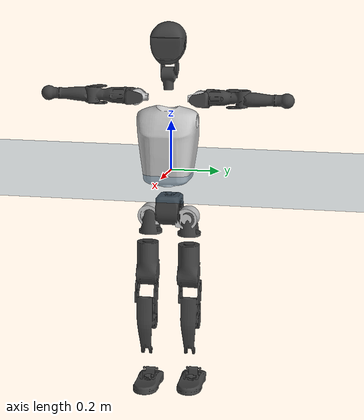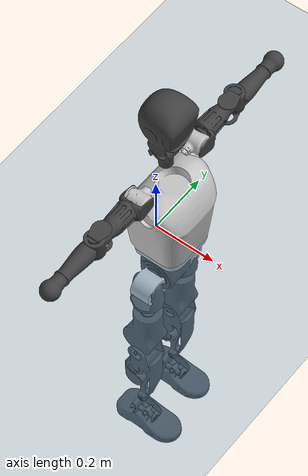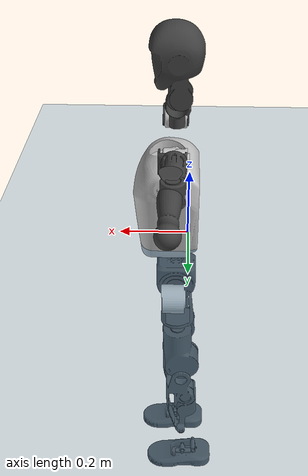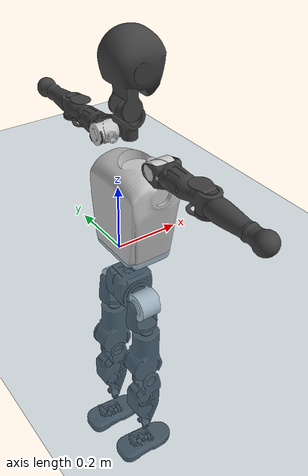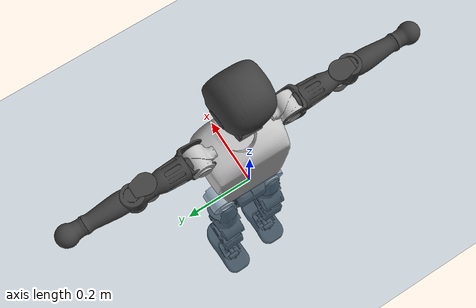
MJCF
<mujoco model="T1">
  <compiler angle="radian" assetdir="assets" balanceinertia="true" inertiafromgeom="false"/>

  <option timestep="0.005" density="1.2" viscosity="2e-05"/>

  <size nkey="1"/>

  <visual>
    <quality shadowsize="8192"/>
    <map shadowclip="0.5"/>
  </visual>

  <default>
    <default class="/">
      <joint armature="0.01" damping="0.01" frictionloss="0.1"/>
      <geom contype="0" conaffinity="0" group="1" solref="-1000 -80"/>
      <site size="0.01 0.005 0.005" group="5"/>
      <general forcelimited="true" biastype="affine" gainprm="25" biasprm="0 -25 -0.6"/>
      <default class="t1">
        <geom rgba="0.25 0.25 0.25 1"/>
        <default class="visual">
          <geom type="mesh" group="2"/>
        </default>
        <default class="collision">
          <geom group="3"/>
        </default>
        <default class="foot">
          <geom size="0.1115 0.05 0.015" type="box" condim="6" group="4" priority="1" solimp="0.015 1 0.015"/>
        </default>
        <default class="reward_collision_sphere">
          <geom group="5" rgba="1 0 0 1"/>
        </default>
      </default>
    </default>
  </default>

  <asset>
    <texture type="skybox" colorspace="auto" name="//unnamed_texture_0" builtin="gradient" rgb1="0.95 0.95 0.95" rgb2="0.95 0.95 0.95" width="100" height="600"/>
    <texture type="2d" colorspace="auto" name="texplane" builtin="checker" rgb1="0.345 0.575 0.748" rgb2="0.345 0.575 0.748" markrgb="1 1 1" width="512" height="512"/>
    <material name="MatPlane" class="/" texture="texplane" texuniform="true" texrepeat="2 2" specular="0.9"/>
    <mesh name="Trunk" class="/" file="Trunk.stl"/>
    <mesh name="H1" class="/" file="H1.stl"/>
    <mesh name="H2" class="/" file="H2.stl"/>
    <mesh name="AL1" class="/" file="AL1.stl"/>
    <mesh name="AL2" class="/" file="AL2.stl"/>
    <mesh name="AL3" class="/" file="AL3.stl"/>
    <mesh name="left_hand_link" class="/" file="left_hand_link.stl"/>
    <mesh name="AR1" class="/" file="AR1.stl"/>
    <mesh name="AR2" class="/" file="AR2.stl"/>
    <mesh name="AR3" class="/" file="AR3.stl"/>
    <mesh name="right_hand_link" class="/" file="right_hand_link.stl"/>
    <mesh name="Waist" class="/" file="Waist.stl"/>
    <mesh name="Hip_Pitch_Left" class="/" file="Hip_Pitch_Left.stl"/>
    <mesh name="Hip_Roll_Left" class="/" file="Hip_Roll_Left.stl"/>
    <mesh name="Hip_Yaw_Left" class="/" file="Hip_Yaw_Left.stl"/>
    <mesh name="Shank_Left" class="/" file="Shank_Left.stl"/>
    <mesh name="Ankle_Cross_Left" class="/" file="Ankle_Cross_Left.stl"/>
    <mesh name="left_foot_link" class="/" file="left_foot_link.stl"/>
    <mesh name="Hip_Pitch_Right" class="/" file="Hip_Pitch_Right.stl"/>
    <mesh name="Hip_Roll_Right" class="/" file="Hip_Roll_Right.stl"/>
    <mesh name="Hip_Yaw_Right" class="/" file="Hip_Yaw_Right.stl"/>
    <mesh name="Shank_Right" class="/" file="Shank_Right.stl"/>
    <mesh name="Ankle_Cross_Right" class="/" file="Ankle_Cross_Right.stl"/>
    <mesh name="right_foot_link" class="/" file="right_foot_link.stl"/>
  </asset>

  <worldbody>
    <geom name="floor" class="/" size="100 100 0.125" type="plane" group="0" material="MatPlane"/>
    <light name="toplight_shadow" class="/" pos="0 0 5" dir="0.0990148 0.0990148 -0.990148" type="directional" ambient="0.04 0.04 0.04" diffuse="0.55 0.55 0.55" specular="0.12 0.12 0.12"/>
    <light name="toplight_fill" class="/" pos="0 0 5" dir="0.0990148 0.0990148 -0.990148" type="directional" castshadow="false" ambient="0.04 0.04 0.04" diffuse="0.3 0.3 0.3" specular="0.08 0.08 0.08"/>
    <body name="trunk" childclass="t1" pos="0.00190986 -0.00132708 -0.00485927" quat="1 0.000424256 0.000544942 -0.000161698">
      <inertial pos="0.0343937 0.00439518 0.145756" quat="0.999972 0.00132815 -0.00700909 0.0021084" mass="8.84161" diaginertia="0.00434626 0.0206444 0.292643"/>
      <joint name="//unnamed_joint_0" type="free" armature="0" damping="0" frictionloss="0"/>
      <geom name="//unnamed_geom_1" class="visual" rgba="0.76 0.76 0.76 1" mesh="Trunk"/>
      <geom name="//unnamed_geom_2" class="collision" size="0.0682121 0.0909495 0.136424" pos="0.0332457 0 0.168135" type="box"/>
      <geom name="//unnamed_geom_3" class="reward_collision_sphere" size="0.104592" pos="0.0332457 0 0.140113"/>
      <geom name="//unnamed_geom_4" class="reward_collision_sphere" size="0.0136424" pos="0.0332457 0.0657272 0"/>
      <geom name="//unnamed_geom_5" class="reward_collision_sphere" size="0.0136424" pos="0.0332457 -0.0657272 0"/>
      <geom name="//unnamed_geom_6" class="reward_collision_sphere" size="0.0136424" pos="0.0332457 0.082739 0.252203"/>
      <geom name="//unnamed_geom_7" class="reward_collision_sphere" size="0.0136424" pos="0.0332457 -0.082739 0.252203"/>
      <site name="imu" pos="0.044863 -0.0468687 0.0437203" size="0.00909495"/>
      <camera name="track" pos="0 -1.54652 0" quat="0.707107 0.707107 0 0" mode="trackcom"/>
      <camera name="ego_camera" pos="0.0675996 0 0.588473" quat="-0.5 -0.5 0.5 0.5"/>
      <body name="H1" pos="0.0345337 -0.00136451 0.341036" quat="0.999991 0.00415503 0.00115611 5.86426e-05">
        <inertial pos="-0.0010275 9.96695e-05 0.0793463" quat="0.760877 -0.0134452 0.00522308 0.648735" mass="0.264986" diaginertia="1.23124e-05 5.55706e-05 0.000728683"/>
        <joint name="AAHead_yaw" pos="0 0 0" axis="0.00678737 -0.0172598 0.999828" range="-1.53853 1.53478" armature="0.00457471" damping="0.035742" frictionloss="0.0969709"/>
        <geom name="//unnamed_geom_8" class="visual" mesh="H1"/>
        <body name="H2" pos="-0.0107066 0.00385975 0.0863431" quat="0.999999 0.000242156 -0.00110466 0.00093458">
          <inertial pos="0.00186346 0.00160611 0.136239" quat="0.988717 0.10723 -0.0702741 -0.0774778" mass="0.479988" diaginertia="0.00010987 0.000524867 0.00899293"/>
          <joint name="Head_pitch" pos="0 0 0" axis="-0.0169136 -0.999663 0.0196722" range="-1.23816 0.428989" armature="0.00870411" damping="0.0165335" frictionloss="0.0842547"/>
          <geom name="//unnamed_geom_9" class="visual" mesh="H2"/>
          <geom name="//unnamed_geom_10" class="collision" size="0.0727596" pos="0.00554095 0 0.154124"/>
          <geom name="//unnamed_geom_11" class="reward_collision_sphere" size="0.0818545" pos="0.0110819 0 0.140113"/>
        </body>
      </body>
      <body name="AL1" pos="0.036702 0.079096 0.306441" quat="0.999997 0.000559171 -0.00246937 -0.000387101">
        <inertial pos="-0.00126324 0.0277518 -0.000673669" quat="0.504448 0.49128 -0.505778 0.498363" mass="0.407276" diaginertia="6.75685e-05 0.000363168 0.0016093"/>
        <joint name="Left_Shoulder_Pitch" pos="0 0 0" axis="-0.00936009 0.999883 0.012105" stiffness="0.00774805" range="-3.34558 1.18975" armature="0.00933051" damping="0.0153921" frictionloss="0.110868"/>
        <geom name="//unnamed_geom_12" class="visual" rgba="0.76 0.76 0.76 1" mesh="AL1"/>
        <body name="AL2" pos="0.00654443 0.0334645 0.000574752" quat="1 5.02213e-05 -0.000111101 -0.000177167">
          <inertial pos="0.00467065 0.0294022 -0.00770181" quat="0.480257 0.511293 -0.492077 0.515552" mass="0.102222" diaginertia="1.94514e-05 9.86431e-05 0.000859521"/>
          <joint name="Left_Shoulder_Roll" pos="0 0 0" axis="-0.99984 0.0172854 -0.00459514" range="-1.74759 1.56724" armature="0.0127449" damping="0.025463" frictionloss="0.0885095"/>
          <geom name="//unnamed_geom_13" class="visual" mesh="AL2"/>
          <body name="AL3" pos="-0.00453726 0.044286 0.00737382" quat="1 -0.000633864 0.000363798 -2.53616e-06">
            <inertial pos="-0.00465756 0.0656976 0.000318242" quat="0.709122 0.704952 -0.0049258 -0.0128302" mass="0.764166" diaginertia="0.000725827 0.00337706 0.00380901"/>
            <joint name="Left_Elbow_Pitch" pos="0 0 0" axis="0.0324149 -0.998738 0.0383535" stiffness="0.0483177" range="-2.45023 2.13819" armature="0.0138229" damping="0.0607163" frictionloss="0.115389"/>
            <geom name="//unnamed_geom_14" class="visual" mesh="AL3"/>
            <geom name="//unnamed_geom_15" class="collision" size="0.0272848 0.0682121" pos="0 0.0386631 0" quat="0.707105 0.707108 0 0" type="cylinder"/>
            <geom name="//unnamed_geom_16" class="reward_collision_sphere" size="0.0327418"/>
            <body name="left_hand_link" pos="0.00647139 0.10784 -0.00283418" quat="0.999999 -0.00111582 -0.00061073 4.69648e-05">
              <inertial pos="-0.0010173 0.085896 -0.00262674" quat="0.707947 0.706265 -5.82669e-05 -0.00056576" mass="0.249415" diaginertia="0.000381181 0.00201092 0.00119652"/>
              <joint name="Left_Elbow_Yaw" pos="0 0 0" axis="-0.0204458 -0.0115141 0.999725" range="-2.38685 0.0372578" armature="0.004682" damping="0.0147532" frictionloss="0.108306"/>
              <geom name="//unnamed_geom_17" class="visual" mesh="left_hand_link"/>
              <geom name="//unnamed_geom_18" class="collision" size="0.0272848 0.0795808" pos="0 0.100524 0" quat="0.707105 0.707108 0 0" type="cylinder"/>
              <geom name="//unnamed_geom_19" class="reward_collision_sphere" size="0.0454747"/>
              <geom name="//unnamed_geom_20" class="reward_collision_sphere" size="0.0318323" pos="0 0.0850588 0"/>
              <geom name="//unnamed_geom_21" class="reward_collision_sphere" size="0.0318323" pos="0 0.166251 0"/>
            </body>
          </body>
        </body>
      </body>
      <body name="AR1" pos="0.0387933 -0.0855261 0.308221" quat="0.999999 -0.000769593 0.00073131 -0.00056467">
        <inertial pos="0.00810546 -0.0364643 -0.00542575" quat="0.53687 0.476955 -0.473612 0.509879" mass="0.392249" diaginertia="7.5738e-05 0.000379768 0.00143506"/>
        <joint name="Right_Shoulder_Pitch" pos="0 0 0" axis="0.000921394 -0.999877 0.0156319" range="-1.22664 3.31127" armature="0.0100495" damping="0" frictionloss="0.114987"/>
        <geom name="//unnamed_geom_22" class="visual" rgba="0.76 0.76 0.76 1" mesh="AR1"/>
        <body name="AR2" pos="0.000188838 -0.0352071 0.00100421" quat="1 0.000381083 0.00010223 -0.000286084">
          <inertial pos="0.00161947 -0.028077 -0.00252944" quat="0.509754 0.487745 -0.513637 0.488296" mass="0.117388" diaginertia="2.13832e-05 8.59682e-05 0.000908691"/>
          <joint name="Right_Shoulder_Roll" pos="0 0 0" axis="-0.999965 0.000595332 0.00832787" range="-1.80257 1.38255" armature="0.0114908" damping="0" frictionloss="0.0960217"/>
          <geom name="//unnamed_geom_23" class="visual" mesh="AR2"/>
          <body name="AR3" pos="-0.00162033 -0.0481718 0.0020488" quat="1 0.000155971 -6.03379e-05 0.000136989">
            <inertial pos="-0.000604045 -0.0573096 -0.00641094" quat="0.693425 0.720261 -0.0196207 -0.000557367" mass="0.777524" diaginertia="0.000655628 0.00383166 0.00312922"/>
            <joint name="Right_Elbow_Pitch" pos="0 0 0" axis="0.0120575 0.999923 -0.00288716" range="-2.35179 2.38245" armature="0.00844858" damping="0" frictionloss="0.0881967"/>
            <geom name="//unnamed_geom_24" class="visual" mesh="AR3"/>
            <geom name="//unnamed_geom_25" class="collision" size="0.0272848 0.0682121" pos="0 -0.0386631 0" quat="0.707105 0.707108 0 0" type="cylinder"/>
            <geom name="//unnamed_geom_26" class="reward_collision_sphere" size="0.0327418"/>
            <body name="right_hand_link" pos="-0.00154239 -0.115345 -2.58648e-05" quat="0.999999 0.000654778 -0.000496507 0.000812203">
              <inertial pos="0.00134253 -0.0859831 0.00738379" quat="0.703809 0.710347 0.000387449 -0.007725" mass="0.24518" diaginertia="0.000418363 0.0022145 0.00121363"/>
              <joint name="Right_Elbow_Yaw" pos="0 0 0" axis="-0.00574209 -0.00539833 0.999969" range="0.026001 2.47382" armature="0.0102775" damping="0.0102996" frictionloss="0.0686317"/>
              <geom name="//unnamed_geom_27" class="visual" mesh="right_hand_link"/>
              <geom name="//unnamed_geom_28" class="collision" size="0.0272848 0.0795808" pos="0 -0.100524 0" quat="0.707105 0.707108 0 0" type="cylinder"/>
              <geom name="//unnamed_geom_29" class="reward_collision_sphere" size="0.0454747"/>
              <geom name="//unnamed_geom_30" class="reward_collision_sphere" size="0.0318323" pos="0 -0.0850588 0"/>
              <geom name="//unnamed_geom_31" class="reward_collision_sphere" size="0.0318323" pos="0 -0.166251 0"/>
            </body>
          </body>
        </body>
      </body>
      <body name="Waist" pos="0.0313965 0.00123941 -0.159899" quat="0.999998 -0.00114709 0.00129778 -0.000416724">
        <inertial pos="0.0123545 -0.00558661 0.0109085" quat="0.98499 0.00321845 -0.172538 0.00389683" mass="1.9822" diaginertia="0.000319044 0.00148669 0.0250301"/>
        <joint name="Waist" pos="0 0 0" axis="0.0397182 -0.0239618 0.998924" range="-1.58973 1.59465" armature="0.010327" damping="0" frictionloss="0.0841297"/>
        <geom name="//unnamed_geom_32" class="visual" mesh="Waist"/>
        <body name="Hip_Pitch_Left" pos="0.00834686 0.0778456 -0.00531108" quat="0.999985 -0.00351147 0.000323043 0.00418846">
          <inertial pos="0.00673346 -0.0147229 -0.0278372" quat="0.976946 0.212678 0.0184883 0.00142666" mass="0.83004" diaginertia="0.000105796 0.000451156 0.0067034"/>
          <joint name="Left_Hip_Pitch" pos="0 0 0" axis="-0.00834554 0.999947 -0.00608249" range="-1.80389 1.60403" armature="0.0121782" damping="0" frictionloss="0.0477174"/>
          <geom name="//unnamed_geom_33" class="visual" rgba="0.76 0.76 0.76 1" mesh="Hip_Pitch_Left"/>
          <body name="Hip_Roll_Left" pos="-0.0104766 0.00502368 -0.0173319" quat="0.999985 -0.00116549 0.00523085 0.000677598">
            <inertial pos="-0.00382837 0.0022309 -0.0665711" quat="0.706761 -0.0116831 -1.22123e-06 0.707356" mass="0.304746" diaginertia="8.97542e-05 0.000427204 0.00271173"/>
            <joint name="Left_Hip_Roll" pos="0 0 0" axis="-0.999998 0.00167299 0.00121487" range="-1.56712 0.234346" armature="0.00696992" damping="0" frictionloss="0.088232"/>
            <geom name="//unnamed_geom_34" class="visual" mesh="Hip_Roll_Left"/>
            <geom name="//unnamed_geom_35" class="reward_collision_sphere" size="0.0500222"/>
            <body name="Hip_Yaw_Left" pos="-0.0027573 -0.0010152 -0.118218" quat="1 9.36185e-05 7.16449e-06 -0.00016151">
              <inertial pos="-0.00520926 -0.0106916 -0.133611" quat="0.69789 -0.0326068 -0.0305651 0.714809" mass="1.57051" diaginertia="0.00130014 0.00676557 0.0137751"/>
              <joint name="Left_Hip_Yaw" pos="0 0 0" axis="0.00414786 0.00432206 -0.999982" range="-1.06416 0.963001" armature="0.00913865" damping="0" frictionloss="0.0692269"/>
              <geom name="//unnamed_geom_36" class="visual" mesh="Hip_Yaw_Left"/>
              <geom name="//unnamed_geom_37" class="collision" size="0.0454747 0.0727596" type="cylinder"/>
              <body name="Shank_Left" pos="-0.0110523 0.00548785 -0.183638" quat="0.999995 0.000169022 0.00108936 0.00308548">
                <inertial pos="-0.00179919 0.00531482 -0.176199" quat="0.997889 0.020345 0.0116292 0.0605736" mass="1.28502" diaginertia="0.00180026 0.00910067 0.0100502"/>
                <joint name="Left_Knee_Pitch" pos="0 0 0" axis="0.00114286 0.999991 -0.00399252" range="-0.0380766 2.48597" armature="0.0061355" damping="0.0175873" frictionloss="0.0898127"/>
                <geom name="//unnamed_geom_38" class="visual" mesh="Shank_Left"/>
                <geom name="//unnamed_geom_39" class="collision" size="0.0454747 0.0682121" pos="0 0 -0.168135" type="cylinder"/>
                <geom name="//unnamed_geom_40" class="reward_collision_sphere" size="0.0591172"/>
                <body name="Ankle_Cross_Left" pos="-0.00388063 0.0062558 -0.393398" quat="0.999999 -0.000606903 0.000510178 -0.000780366">
                  <inertial pos="-0.0029816 0.0027461 -0.0121661" quat="0.416358 0.558652 0.558076 0.450672" mass="0.057731" diaginertia="1.3953e-06 7.08579e-06 6.16347e-05"/>
                  <joint name="Left_Ankle_Pitch" pos="0 0 0" axis="-0.0016431 0.999957 0.00913213" range="-0.685097 0.166891" armature="0.00713036" damping="0.0581213" frictionloss="0.072301"/>
                  <geom name="//unnamed_geom_41" class="visual" mesh="Ankle_Cross_Left"/>
                  <body name="left_foot_link" pos="0.00347297 0.00346206 -0.00903651" quat="0.999989 -0.00147432 0.0037165 0.00236264">
                    <inertial pos="-0.000200465 0.000666301 -0.0108039" quat="-0.0304822 0.626954 0.000772828 0.778459" mass="0.449402" diaginertia="0.000124995 0.000581032 0.00884654"/>
                    <joint name="Left_Ankle_Roll" pos="0 0 0" axis="-0.99932 -0.0326069 0.0172285" range="-0.416533 0.248002" armature="0.00893126" damping="0.006197" frictionloss="0.040392"/>
                    <geom name="//unnamed_geom_42" class="visual" mesh="left_foot_link"/>
                    <geom name="left_foot" class="foot" size="0.102681 0.0609794 0.0079836" pos="0.00554095 0 -0.0210169"/>
                    <geom name="//unnamed_geom_44" class="reward_collision_sphere" size="0.0472937" pos="0.00554095 0 -0.0210169"/>
                    <geom name="//unnamed_geom_45" class="reward_collision_sphere" size="0.0272848" pos="0.0526391 -0.017785 -0.0210169"/>
                    <geom name="//unnamed_geom_46" class="reward_collision_sphere" size="0.0272848" pos="-0.0387867 -0.017785 -0.0210169"/>
                    <site name="left_foot" class="foot" pos="0.00554095 0 -0.0210169" size="0.00909495"/>
                  </body>
                </body>
              </body>
            </body>
          </body>
        </body>
        <body name="Hip_Pitch_Right" pos="0.00185577 -0.0819397 3.77216e-05" quat="1 -0.000298027 -0.000571986 4.70157e-05">
          <inertial pos="0.00228021 0.00646996 -0.0224883" quat="0.981893 -0.188585 -0.0090832 -0.0154492" mass="0.885408" diaginertia="0.000106937 0.000437555 0.00771635"/>
          <joint name="Right_Hip_Pitch" pos="0 0 0" axis="6.88383e-06 -1 0.000513496" stiffness="0.00500951" range="-1.53797 1.87007" armature="0.00790804" damping="0.00859888" frictionloss="0.0968862"/>
          <geom name="//unnamed_geom_47" class="visual" rgba="0.76 0.76 0.76 1" mesh="Hip_Pitch_Right"/>
          <body name="Hip_Roll_Right" pos="-0.0047343 0.00257451 -0.0194451" quat="1 -0.000125348 -6.0376e-05 -0.000172534">
            <inertial pos="0.00175687 -0.00476809 -0.0757264" quat="0.716899 -0.0309576 -0.000916717 0.696489" mass="0.313349" diaginertia="9.33563e-05 0.000430166 0.00304896"/>
            <joint name="Right_Hip_Roll" pos="0 0 0" axis="-1 -0.000273287 0.000321655" stiffness="0.0560599" range="-0.219019 1.5517" armature="0.0109786" damping="0.00618015" frictionloss="0.0959139"/>
            <geom name="//unnamed_geom_48" class="visual" mesh="Hip_Roll_Right"/>
            <geom name="//unnamed_geom_49" class="reward_collision_sphere" size="0.0500222"/>
            <body name="Hip_Yaw_Right" pos="0.0075134 -0.0104205 -0.114599" quat="1 -0.000274449 -8.09829e-05 0.000140527">
              <inertial pos="0.00218997 0.00101111 -0.11521" quat="0.692963 -0.0459843 -0.0380444 0.718499" mass="1.49798" diaginertia="0.00138782 0.0071898 0.0143783"/>
              <joint name="Right_Hip_Yaw" pos="0 0 0" axis="-0.00118465 -0.00550675 -0.999984" stiffness="0.00420861" range="-1.15618 1.07722" armature="0.00992392" damping="0.0067457" frictionloss="0.0928312"/>
              <geom name="//unnamed_geom_50" class="visual" mesh="Hip_Yaw_Right"/>
              <geom name="//unnamed_geom_51" class="collision" size="0.0454747 0.0727596" type="cylinder"/>
              <body name="Shank_Right" pos="-0.00820148 -0.00604316 -0.193263" quat="0.999999 0.000147665 0.00110205 0.000531021">
                <inertial pos="-0.0142976 0.00116426 -0.169564" quat="0.998762 -0.034003 -0.0291893 -0.02158" mass="1.55996" diaginertia="0.00199512 0.00951502 0.0115612"/>
                <joint name="Right_Knee_Pitch" pos="0 0 0" axis="-0.000104493 -0.999491 0.0319082" range="-2.37237 0.00176246" armature="0.00730313" damping="0.0258201" frictionloss="0.0623683"/>
                <geom name="//unnamed_geom_52" class="visual" mesh="Shank_Right"/>
                <geom name="//unnamed_geom_53" class="collision" size="0.0454747 0.0682121" pos="0 0 -0.168135" type="cylinder"/>
                <geom name="//unnamed_geom_54" class="reward_collision_sphere" size="0.0591172"/>
                <body name="Ankle_Cross_Right" pos="0.00319432 0.00952293 -0.39064" quat="0.99999 -0.00365307 0.00234551 -0.000993039">
                  <inertial pos="-0.00267027 0.00149254 -0.0124073" quat="0.437067 0.549284 0.557385 0.443376" mass="0.0551512" diaginertia="1.63646e-06 6.90528e-06 6.10816e-05"/>
                  <joint name="Right_Ankle_Pitch" pos="0 0 0" axis="-0.00716494 -0.999964 0.00454656" range="-0.293385 0.677111" armature="0.0082945" damping="0" frictionloss="0.0932903"/>
                  <geom name="//unnamed_geom_55" class="visual" mesh="Ankle_Cross_Right"/>
                  <body name="right_foot_link" pos="0.000889136 -0.00141651 -0.0122479" quat="0.999995 0.00288356 0.000751203 0.00126903">
                    <inertial pos="0.00618288 -0.000415784 -0.0124749" quat="-0.00365191 0.622136 0.00021957 0.782901" mass="0.510984" diaginertia="0.000155842 0.000695709 0.0119223"/>
                    <joint name="Right_Ankle_Roll" pos="0 0 0" axis="-0.999907 -0.00627462 0.0120877" range="-0.517173 0.499296" armature="0.0087344" damping="0.0139226" frictionloss="0.0917223"/>
                    <geom name="//unnamed_geom_56" class="visual" mesh="right_foot_link"/>
                    <geom name="right_foot" class="foot" size="0.0958039 0.0573836 0.012617" pos="0.00554095 0 -0.0210169"/>
                    <geom name="//unnamed_geom_58" class="reward_collision_sphere" size="0.0363798"/>
                    <geom name="//unnamed_geom_59" class="reward_collision_sphere" size="0.0272848" pos="0.00554095 0 -0.0210169"/>
                    <geom name="//unnamed_geom_60" class="reward_collision_sphere" size="0.0272848" pos="0.0526391 0.017785 -0.0210169"/>
                    <geom name="//unnamed_geom_61" class="reward_collision_sphere" size="0.0272848" pos="-0.0387867 0.017785 -0.0210169"/>
                    <site name="right_foot" class="foot" pos="0.00554095 0 -0.0210169" size="0.00909495"/>
                  </body>
                </body>
              </body>
            </body>
          </body>
        </body>
      </body>
    </body>
  </worldbody>

  <contact>
    <pair class="/" geom1="floor" geom2="left_foot" name="//unnamed_contact_0"/>
    <pair class="/" geom1="floor" geom2="right_foot" name="//unnamed_contact_1"/>
  </contact>

  <actuator>
    <general name="AAHead_yaw" class="/" joint="AAHead_yaw" forcerange="-6.57272 6.57272" gainprm="27.9003" biasprm="0 -27.9003 -0.602866"/>
    <general name="Head_pitch" class="/" joint="Head_pitch" forcerange="-6.38037 6.38037" gainprm="27.9003" biasprm="0 -27.9003 -0.602866"/>
    <general name="Left_Shoulder_Pitch" class="/" joint="Left_Shoulder_Pitch" forcerange="-17.1588 17.1588" gainprm="27.9003" biasprm="0 -27.9003 -0.602866"/>
    <general name="Left_Shoulder_Roll" class="/" joint="Left_Shoulder_Roll" forcerange="-18.507 18.507" gainprm="27.9003" biasprm="0 -27.9003 -0.602866"/>
    <general name="Left_Elbow_Pitch" class="/" joint="Left_Elbow_Pitch" forcerange="-22.2342 22.2342" gainprm="27.9003" biasprm="0 -27.9003 -0.602866"/>
    <general name="Left_Elbow_Yaw" class="/" joint="Left_Elbow_Yaw" forcerange="-11.5484 11.5484" gainprm="27.9003" biasprm="0 -27.9003 -0.602866"/>
    <general name="Right_Shoulder_Pitch" class="/" joint="Right_Shoulder_Pitch" forcerange="-11.2356 11.2356" gainprm="27.9003" biasprm="0 -27.9003 -0.602866"/>
    <general name="Right_Shoulder_Roll" class="/" joint="Right_Shoulder_Roll" forcerange="-17.5222 17.5222" gainprm="27.9003" biasprm="0 -27.9003 -0.602866"/>
    <general name="Right_Elbow_Pitch" class="/" joint="Right_Elbow_Pitch" forcerange="-16.3387 16.3387" gainprm="27.9003" biasprm="0 -27.9003 -0.602866"/>
    <general name="Right_Elbow_Yaw" class="/" joint="Right_Elbow_Yaw" forcerange="-16.8897 16.8897" gainprm="27.9003" biasprm="0 -27.9003 -0.602866"/>
    <general name="Waist" class="/" joint="Waist" forcerange="-25.869 25.869" gainprm="27.9003" biasprm="0 -27.9003 -0.602866"/>
    <general name="Left_Hip_Pitch" class="/" joint="Left_Hip_Pitch" forcerange="-43.8495 43.8495" gainprm="27.9003" biasprm="0 -27.9003 -0.602866"/>
    <general name="Left_Hip_Roll" class="/" joint="Left_Hip_Roll" forcerange="-18.66 18.66" gainprm="27.9003" biasprm="0 -27.9003 -0.602866"/>
    <general name="Left_Hip_Yaw" class="/" joint="Left_Hip_Yaw" forcerange="-37.1779 37.1779" gainprm="27.9003" biasprm="0 -27.9003 -0.602866"/>
    <general name="Left_Knee_Pitch" class="/" joint="Left_Knee_Pitch" forcerange="-74.0549 74.0549" gainprm="27.9003" biasprm="0 -27.9003 -0.602866"/>
    <general name="Left_Ankle_Pitch" class="/" joint="Left_Ankle_Pitch" forcerange="-19.1632 19.1632" gainprm="27.9003" biasprm="0 -27.9003 -0.602866"/>
    <general name="Left_Ankle_Roll" class="/" joint="Left_Ankle_Roll" forcerange="-13.3721 13.3721" gainprm="27.9003" biasprm="0 -27.9003 -0.602866"/>
    <general name="Right_Hip_Pitch" class="/" joint="Right_Hip_Pitch" forcerange="-39.7641 39.7641" gainprm="27.9003" biasprm="0 -27.9003 -0.602866"/>
    <general name="Right_Hip_Roll" class="/" joint="Right_Hip_Roll" forcerange="-26.0499 26.0499" gainprm="27.9003" biasprm="0 -27.9003 -0.602866"/>
    <general name="Right_Hip_Yaw" class="/" joint="Right_Hip_Yaw" forcerange="-24.0163 24.0163" gainprm="27.9003" biasprm="0 -27.9003 -0.602866"/>
    <general name="Right_Knee_Pitch" class="/" joint="Right_Knee_Pitch" forcerange="-54.6608 54.6608" gainprm="27.9003" biasprm="0 -27.9003 -0.602866"/>
    <general name="Right_Ankle_Pitch" class="/" joint="Right_Ankle_Pitch" forcerange="-23.2479 23.2479" gainprm="27.9003" biasprm="0 -27.9003 -0.602866"/>
    <general name="Right_Ankle_Roll" class="/" joint="Right_Ankle_Roll" forcerange="-13.4634 13.4634" gainprm="27.9003" biasprm="0 -27.9003 -0.602866"/>
  </actuator>

  <sensor>
    <gyro site="imu" name="imu_angular_velocity"/>
    <velocimeter site="imu" name="imu_linear_velocity"/>
    <framelinvel objtype="site" objname="left_foot" name="left_foot_global_linear_velocity"/>
    <framelinvel objtype="site" objname="right_foot" name="right_foot_global_linear_velocity"/>
  </sensor>

  <keyframe>
    <key name="home" qpos="0 0 0.6385 1 0 0 0 0 0 0 1.4 0 -0.4 0 -1.4 0 0.4 0 -0.4 0 0 0.8 -0.4 0 0.4 0 0 -0.8 0.4 0"/>
  </keyframe>
</mujoco>
